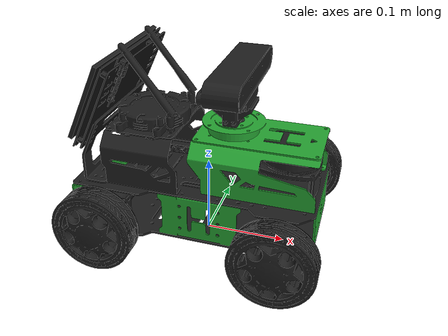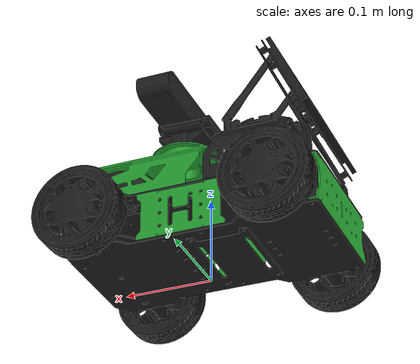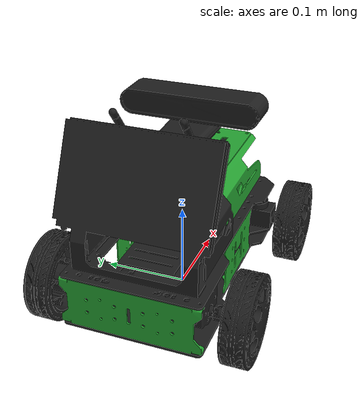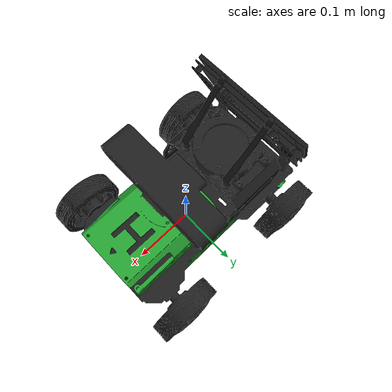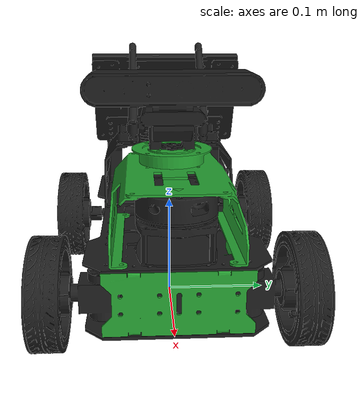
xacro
<?xml version="1.0" encoding="utf-8"?>
<robot name="jetacker" xmlns:xacro="http://ros.org/wiki/xacro" >
  <xacro:property name="M_PI"               value="3.1415926535897931"/>
  <xacro:property name="base_link_mass"     value="1.6" />
  <xacro:property name="base_link_w"        value="0.296"/>
  <xacro:property name="base_link_h"        value="0.16"/>
  <xacro:property name="base_link_d"        value="0.126"/>

  <xacro:property name="body_link_mass"     value="1.6" />
  <xacro:property name="body_link_w"        value="0.22"/>
  <xacro:property name="body_link_h"        value="0.17"/>
  <xacro:property name="body_link_d"        value="0.095"/>

  <xacro:property name="wheel_link_mass"    value="0.1" />
  <xacro:property name="wheel_link_radius"  value="0.05"/>
  <xacro:property name="wheel_link_length"  value="0.039"/>

  <link name="base_footprint"/>

  <joint name="base_joint" type="fixed">
    <parent link="base_footprint"/>
    <child link="base_link"/>
    <origin xyz="0.0 0.0 0" rpy="0 0 0"/>
  </joint>
  <link name="w_link"/>
  <joint
    name="w_joint"
    type="revolute">
    <origin
      xyz="0 0 0"
      rpy="0 0 0" />
    <parent
      link="link1" />
    <child
      link="w_link" />
    <axis
      xyz="0 0 1" />
    <limit
      lower="-2.09"
      upper="2.09"
      effort="1000"
      velocity="10" />
  </joint>
  <link
    name="base_link">
    <xacro:box_inertial m="${base_link_mass}" w="${base_link_w}" h="${base_link_h}" d="${base_link_d}"/>
    <visual>
      <origin
        xyz="0 0 0"
        rpy="0 0 0" />
      <geometry>
        <mesh
          filename="package://jetacker_description/meshes/base_link.STL" />
      </geometry>
      <material name="black"/>
    </visual>
    <collision>
      <origin
        xyz="-0.004 0 ${base_link_d/2 + 0.022}"
        rpy="0 0 0" />
      <geometry>
        <box size="${base_link_w} ${base_link_h} ${base_link_d}" />
      </geometry>
    </collision>
  </link>
  <link
    name="back_shell_link">
    <xacro:box_inertial m="${body_link_mass}" w="${body_link_w}" h="${body_link_h}" d="${body_link_d}"/>
    <visual>
      <origin
        xyz="0 0 0"
        rpy="0 0 0" />
      <geometry>
        <mesh
          filename="package://jetacker_description/meshes/back_shell_link.STL" />
      </geometry>
      <material name="green"/>
    </visual>
    <collision>
      <origin
        xyz="-0.04 0 ${base_link_d + 0.022 + body_link_d/2}"
        rpy="0 0 0" />
      <geometry>
        <box size="${body_link_w} ${body_link_h} ${body_link_d}" />
      </geometry>
    </collision>
  </link>
  <joint
    name="back_shell_joint"
    type="fixed">
    <origin
      xyz="0 0 0"
      rpy="0 0 0" />
    <parent
      link="base_link" />
    <child
      link="back_shell_link" />
    <axis
      xyz="0 0 0" />
  </joint>
  <link
    name="link1">
    <inertial>
      <origin
        xyz="0.000273458158848059 4.49697391709507E-08 0.0127682239974202"
        rpy="0 0 0" />
      <mass
        value="0.0117617552923888" />
      <inertia
        ixx="2.42304907313034E-06"
        ixy="8.36427578709212E-13"
        ixz="-4.88815706874446E-08"
        iyy="2.24167366920736E-06"
        iyz="2.4783598093895E-12"
        izz="3.78066563706159E-06" />
    </inertial>
    <visual>
      <origin
        xyz="0 0 0"
        rpy="0 0 0" />
      <geometry>
        <mesh
          filename="package://jetacker_description/meshes/link1.STL" />
      </geometry>
      <material name="black"/>
    </visual>
  </link>
  <joint
    name="joint1"
    type="revolute">
    <origin
      xyz="0.031299 0.00068637 0.16156"
      rpy="0 0 0" />
    <parent
      link="base_link" />
    <child
      link="link1" />
    <axis
      xyz="0 0 1" />
    <limit
      lower="-2.09"
      upper="2.09"
      effort="1000"
      velocity="10" />
  </joint>
  <link
    name="depth_cam_link">
    <inertial>
      <origin
        xyz="-0.00267477609208174 -1.63263137193841E-05 -0.00522210299748882"
        rpy="0 0 0" />
      <mass
        value="0.22552781639362" />
      <inertia
        ixx="0.000408522155796754"
        ixy="-7.65921501012663E-09"
        ixz="1.66771046033071E-07"
        iyy="4.81468336120099E-05"
        iyz="-5.69880969191004E-09"
        izz="0.000428962116485588" />
    </inertial>
    <visual>
      <origin
        xyz="0 0 0"
        rpy="0 0 0" />
      <geometry>
        <mesh
          filename="package://jetacker_description/meshes/depth_cam_link.STL" />
      </geometry>
      <material name="black"/>
    </visual>
  </link>
  <joint
    name="depth_cam_joint"
    type="fixed">
    <origin
      xyz="0.0057651 0.00025 0.057913"
      rpy="0 0 0" />
    <parent
      link="link1" />
    <child
      link="depth_cam_link" />
    <axis
      xyz="0 0 0" />
  </joint>
  <link
    name="lidar_link">
    <inertial>
      <origin
        xyz="-0.00221931680115031 0.000376419599582719 -0.0173018800523995"
        rpy="0 0 0" />
      <mass
        value="0.0438457545362112" />
      <inertia
        ixx="1.59958556469832E-05"
        ixy="4.53029353441676E-08"
        ixz="2.33892337631863E-07"
        iyy="2.04183700013467E-05"
        iyz="-1.10000396493279E-08"
        izz="3.50483610398295E-05" />
    </inertial>
    <visual>
      <origin
        xyz="0 0 0"
        rpy="0 0 0" />
      <geometry>
        <mesh
          filename="package://jetacker_description/meshes/lidar_link.STL" />
      </geometry>
      <material name="black"/>
    </visual>
  </link>
  <joint
    name="lidar_joint"
    type="fixed">
    <origin
      xyz="0.10414 0.000685 0.13378"
      rpy="0 0 0" />
    <parent
      link="base_link" />
    <child
      link="lidar_link" />
    <axis
      xyz="0 0 0" />
  </joint>
  <link name="lidar_sim_frame" />
  <joint
    name="lidar_sim_frame_joint"
    type="fixed">
    <origin xyz="0 0 0" rpy="0 0 ${M_PI}" />
    <parent link="lidar_link" />
    <child link="lidar_sim_frame" />
  </joint>
  <link
    name="wheel_right_front">
    <xacro:cylinder_inertial m="${wheel_link_mass}" r="${wheel_link_radius}" h="${wheel_link_length}" />
    <visual>
      <origin
        xyz="0 0 0"
        rpy="0 0 0" />
      <geometry>
        <mesh
          filename="package://jetacker_description/meshes/wheel_right_front.STL" />
      </geometry>
      <material name="black"/>
    </visual>
    <collision>
      <origin
        xyz="0 -0.019 0"
        rpy="${M_PI/2} 0 0" />
      <geometry>
        <cylinder length="${wheel_link_length}" radius="${wheel_link_radius}"/>
      </geometry>
    </collision>
  </link>
  <joint
    name="wheel_right_front_joint"
    type="fixed">
    <origin
      xyz="0.10733 -0.091241 0.050002"
      rpy="0 0 0" />
    <parent
      link="base_link" />
    <child
      link="wheel_right_front" />
    <axis
      xyz="0 0 0" />
  </joint>
  <link
    name="wheel_right_back">
    <xacro:cylinder_inertial m="${wheel_link_mass}" r="${wheel_link_radius}" h="${wheel_link_length}" />
    <visual>
      <origin
        xyz="0 0 0"
        rpy="0 0 0" />
      <geometry>
        <mesh
          filename="package://jetacker_description/meshes/wheel_right_back.STL" />
      </geometry>
      <material name="black"/>
    </visual>
    <collision>
      <origin
        xyz="0 -0.019 0"
        rpy="${M_PI/2} 0 0" />
      <geometry>
        <cylinder length="${wheel_link_length}" radius="${wheel_link_radius}"/>
      </geometry>
    </collision>
  </link>
  <joint
    name="wheel_right_back_joint"
    type="fixed">
    <origin
      xyz="-0.106 -0.091444 0.050335"
      rpy="0 0 0" />
    <parent
      link="base_link" />
    <child
      link="wheel_right_back" />
    <axis
      xyz="0 0 0" />
  </joint>
  <link
    name="wheel_left_back">
    <xacro:cylinder_inertial m="${wheel_link_mass}" r="${wheel_link_radius}" h="${wheel_link_length}" />
    <visual>
      <origin
        xyz="0 0 0"
        rpy="0 0 0" />
      <geometry>
        <mesh
          filename="package://jetacker_description/meshes/wheel_left_back.STL" />
      </geometry>
      <material name="black"/>
    </visual>
    <collision>
      <origin
        xyz="0 0.019 0"
        rpy="${M_PI/2} 0 0" />
      <geometry>
        <cylinder length="${wheel_link_length}" radius="${wheel_link_radius}"/>
      </geometry>
    </collision>
  </link>
  <joint
    name="wheel_left_back_joint"
    type="fixed">
    <origin
      xyz="-0.10599 0.090107 0.050328"
      rpy="0 0 0" />
    <parent
      link="base_link" />
    <child
      link="wheel_left_back" />
    <axis
      xyz="0 0 0" />
  </joint>
  <link
    name="wheel_left_front">
    <xacro:cylinder_inertial m="${wheel_link_mass}" r="${wheel_link_radius}" h="${wheel_link_length}" />
    <visual>
      <origin
        xyz="0 0 0"
        rpy="0 0 0" />
      <geometry>
        <mesh
          filename="package://jetacker_description/meshes/wheel_left_front.STL" />
      </geometry>
      <material name="black"/>
    </visual>
    <collision>
      <origin
        xyz="0 0.019 0"
        rpy="${M_PI/2} 0 0" />
      <geometry>
        <cylinder length="${wheel_link_length}" radius="${wheel_link_radius}"/>
      </geometry>
    </collision>
  </link>
  <joint
    name="wheel_left_front_joint"
    type="fixed">
    <origin
      xyz="0.10734 0.092607 0.049998"
      rpy="0 0 0" />
    <parent
      link="base_link" />
    <child
      link="wheel_left_front" />
    <axis
      xyz="0 0 0" />
  </joint>
</robot>
